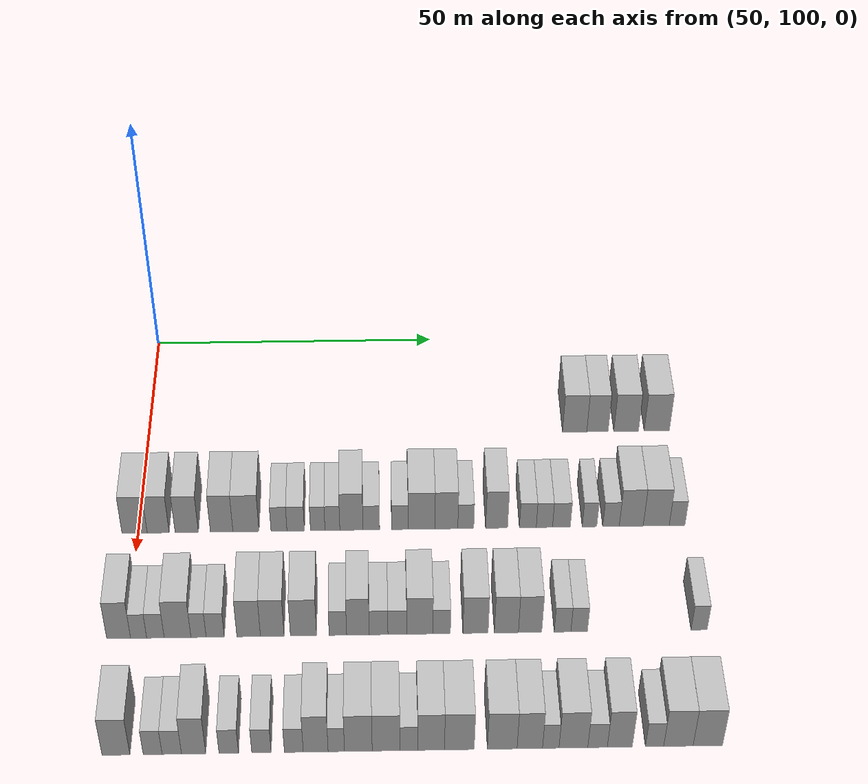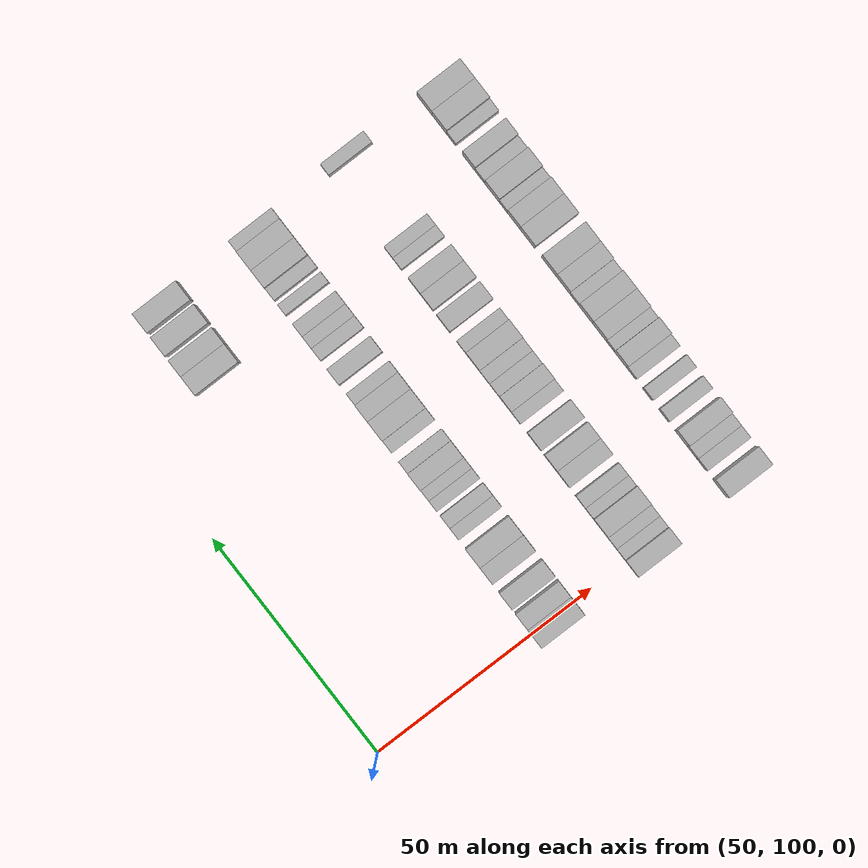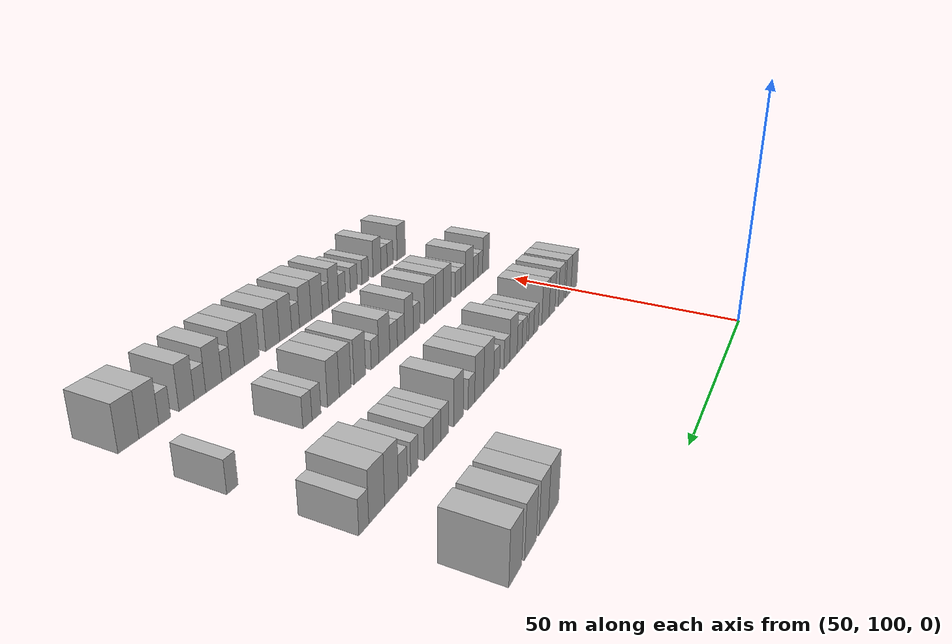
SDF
<sdf version="1.6">
 <world name="default">
  <model name="building_528">
   <static>1</static>
   <pose>69.0000 174.7450 0 0.000000 0.000000 0.000000</pose>
   <link name="link">
    <pose>0 0 4.50 0 0 0</pose>
    <collision name="collision"><geometry><box><size>10.0000 4.2751 9.0000</size></box></geometry></collision>
    <visual name="visual">
     <cast_shadows>0</cast_shadows>
     <geometry><box><size>10.0000 4.2751 9.0000</size></box></geometry>
     <material>
      <script>
       <uri>model://HANNAS_wall/materials/scripts</uri>
       <uri>model://HANNAS_wall/materials/textures</uri>
       <name>vrc/HANNAS_wall</name>
      </script>
     </material>
    </visual>
   </link>
  </model>
  <model name="building_529">
   <static>1</static>
   <pose>69.0000 178.7590 0 0.000000 0.000000 0.000000</pose>
   <link name="link">
    <pose>0 0 4.50 0 0 0</pose>
    <collision name="collision"><geometry><box><size>10.0000 3.7528 9.0000</size></box></geometry></collision>
    <visual name="visual">
     <cast_shadows>0</cast_shadows>
     <geometry><box><size>10.0000 3.7528 9.0000</size></box></geometry>
     <material>
      <script>
       <uri>model://HANNAS_wall/materials/scripts</uri>
       <uri>model://HANNAS_wall/materials/textures</uri>
       <name>vrc/HANNAS_wall</name>
      </script>
     </material>
    </visual>
   </link>
  </model>
  <model name="building_530">
   <static>1</static>
   <pose>69.0000 183.8069 0 0.000000 0.000000 0.000000</pose>
   <link name="link">
    <pose>0 0 4.50 0 0 0</pose>
    <collision name="collision"><geometry><box><size>10.0000 4.3430 9.0000</size></box></geometry></collision>
    <visual name="visual">
     <cast_shadows>0</cast_shadows>
     <geometry><box><size>10.0000 4.3430 9.0000</size></box></geometry>
     <material>
      <script>
       <uri>model://HANNAS_wall/materials/scripts</uri>
       <uri>model://HANNAS_wall/materials/textures</uri>
       <name>vrc/HANNAS_wall</name>
      </script>
     </material>
    </visual>
   </link>
  </model>
  <model name="building_531">
   <static>1</static>
   <pose>69.0000 189.1953 0 0.000000 0.000000 0.000000</pose>
   <link name="link">
    <pose>0 0 4.50 0 0 0</pose>
    <collision name="collision"><geometry><box><size>10.0000 4.4339 9.0000</size></box></geometry></collision>
    <visual name="visual">
     <cast_shadows>0</cast_shadows>
     <geometry><box><size>10.0000 4.4339 9.0000</size></box></geometry>
     <material>
      <script>
       <uri>model://HANNAS_wall/materials/scripts</uri>
       <uri>model://HANNAS_wall/materials/textures</uri>
       <name>vrc/HANNAS_wall</name>
      </script>
     </material>
    </visual>
   </link>
  </model>
  <model name="building_695">
   <static>1</static>
   <pose>91.0000 99.3769 0 0.000000 0.000000 0.000000</pose>
   <link name="link">
    <pose>0 0 4.50 0 0 0</pose>
    <collision name="collision"><geometry><box><size>10.0000 4.2020 9.0000</size></box></geometry></collision>
    <visual name="visual">
     <cast_shadows>0</cast_shadows>
     <geometry><box><size>10.0000 4.2020 9.0000</size></box></geometry>
     <material>
      <script>
       <uri>model://HANNAS_wall/materials/scripts</uri>
       <uri>model://HANNAS_wall/materials/textures</uri>
       <name>vrc/HANNAS_wall</name>
      </script>
     </material>
    </visual>
   </link>
  </model>
  <model name="building_696">
   <static>1</static>
   <pose>91.0000 103.3068 0 0.000000 0.000000 0.000000</pose>
   <link name="link">
    <pose>0 0 4.50 0 0 0</pose>
    <collision name="collision"><geometry><box><size>10.0000 3.6578 9.0000</size></box></geometry></collision>
    <visual name="visual">
     <cast_shadows>0</cast_shadows>
     <geometry><box><size>10.0000 3.6578 9.0000</size></box></geometry>
     <material>
      <script>
       <uri>model://HANNAS_wall/materials/scripts</uri>
       <uri>model://HANNAS_wall/materials/textures</uri>
       <name>vrc/HANNAS_wall</name>
      </script>
     </material>
    </visual>
   </link>
  </model>
  <model name="building_697">
   <static>1</static>
   <pose>91.0000 108.0763 0 0.000000 0.000000 0.000000</pose>
   <link name="link">
    <pose>0 0 4.50 0 0 0</pose>
    <collision name="collision"><geometry><box><size>10.0000 3.8812 9.0000</size></box></geometry></collision>
    <visual name="visual">
     <cast_shadows>0</cast_shadows>
     <geometry><box><size>10.0000 3.8812 9.0000</size></box></geometry>
     <material>
      <script>
       <uri>model://HANNAS_wall/materials/scripts</uri>
       <uri>model://HANNAS_wall/materials/textures</uri>
       <name>vrc/HANNAS_wall</name>
      </script>
     </material>
    </visual>
   </link>
  </model>
  <model name="building_698">
   <static>1</static>
   <pose>91.0000 113.8976 0 0.000000 0.000000 0.000000</pose>
   <link name="link">
    <pose>0 0 4.50 0 0 0</pose>
    <collision name="collision"><geometry><box><size>10.0000 3.7614 9.0000</size></box></geometry></collision>
    <visual name="visual">
     <cast_shadows>0</cast_shadows>
     <geometry><box><size>10.0000 3.7614 9.0000</size></box></geometry>
     <material>
      <script>
       <uri>model://HANNAS_wall/materials/scripts</uri>
       <uri>model://HANNAS_wall/materials/textures</uri>
       <name>vrc/HANNAS_wall</name>
      </script>
     </material>
    </visual>
   </link>
  </model>
  <model name="building_699">
   <static>1</static>
   <pose>91.0000 117.9586 0 0.000000 0.000000 0.000000</pose>
   <link name="link">
    <pose>0 0 4.50 0 0 0</pose>
    <collision name="collision"><geometry><box><size>10.0000 4.3605 9.0000</size></box></geometry></collision>
    <visual name="visual">
     <cast_shadows>0</cast_shadows>
     <geometry><box><size>10.0000 4.3605 9.0000</size></box></geometry>
     <material>
      <script>
       <uri>model://HANNAS_wall/materials/scripts</uri>
       <uri>model://HANNAS_wall/materials/textures</uri>
       <name>vrc/HANNAS_wall</name>
      </script>
     </material>
    </visual>
   </link>
  </model>
  <model name="building_700">
   <static>1</static>
   <pose>91.0000 123.4711 0 0.000000 0.000000 0.000000</pose>
   <link name="link">
    <pose>0 0 3.00 0 0 0</pose>
    <collision name="collision"><geometry><box><size>10.0000 2.6646 6.0000</size></box></geometry></collision>
    <visual name="visual">
     <cast_shadows>0</cast_shadows>
     <geometry><box><size>10.0000 2.6646 6.0000</size></box></geometry>
     <material>
      <script>
       <uri>model://HANNAS_wall/materials/scripts</uri>
       <uri>model://HANNAS_wall/materials/textures</uri>
       <name>vrc/HANNAS_wall</name>
      </script>
     </material>
    </visual>
   </link>
  </model>
  <model name="building_701">
   <static>1</static>
   <pose>91.0000 126.2668 0 0.000000 0.000000 0.000000</pose>
   <link name="link">
    <pose>0 0 3.00 0 0 0</pose>
    <collision name="collision"><geometry><box><size>10.0000 2.9268 6.0000</size></box></geometry></collision>
    <visual name="visual">
     <cast_shadows>0</cast_shadows>
     <geometry><box><size>10.0000 2.9268 6.0000</size></box></geometry>
     <material>
      <script>
       <uri>model://HANNAS_wall/materials/scripts</uri>
       <uri>model://HANNAS_wall/materials/textures</uri>
       <name>vrc/HANNAS_wall</name>
      </script>
     </material>
    </visual>
   </link>
  </model>
  <model name="building_702">
   <static>1</static>
   <pose>91.0000 129.9434 0 0.000000 0.000000 0.000000</pose>
   <link name="link">
    <pose>0 0 3.00 0 0 0</pose>
    <collision name="collision"><geometry><box><size>10.0000 2.4265 6.0000</size></box></geometry></collision>
    <visual name="visual">
     <cast_shadows>0</cast_shadows>
     <geometry><box><size>10.0000 2.4265 6.0000</size></box></geometry>
     <material>
      <script>
       <uri>model://HANNAS_wall/materials/scripts</uri>
       <uri>model://HANNAS_wall/materials/textures</uri>
       <name>vrc/HANNAS_wall</name>
      </script>
     </material>
    </visual>
   </link>
  </model>
  <model name="building_703">
   <static>1</static>
   <pose>91.0000 132.4025 0 0.000000 0.000000 0.000000</pose>
   <link name="link">
    <pose>0 0 3.00 0 0 0</pose>
    <collision name="collision"><geometry><box><size>10.0000 2.4916 6.0000</size></box></geometry></collision>
    <visual name="visual">
     <cast_shadows>0</cast_shadows>
     <geometry><box><size>10.0000 2.4916 6.0000</size></box></geometry>
     <material>
      <script>
       <uri>model://HANNAS_wall/materials/scripts</uri>
       <uri>model://HANNAS_wall/materials/textures</uri>
       <name>vrc/HANNAS_wall</name>
      </script>
     </material>
    </visual>
   </link>
  </model>
  <model name="building_704">
   <static>1</static>
   <pose>91.0000 135.5866 0 0.000000 0.000000 0.000000</pose>
   <link name="link">
    <pose>0 0 4.50 0 0 0</pose>
    <collision name="collision"><geometry><box><size>10.0000 3.8766 9.0000</size></box></geometry></collision>
    <visual name="visual">
     <cast_shadows>0</cast_shadows>
     <geometry><box><size>10.0000 3.8766 9.0000</size></box></geometry>
     <material>
      <script>
       <uri>model://HANNAS_wall/materials/scripts</uri>
       <uri>model://HANNAS_wall/materials/textures</uri>
       <name>vrc/HANNAS_wall</name>
      </script>
     </material>
    </visual>
   </link>
  </model>
  <model name="building_705">
   <static>1</static>
   <pose>91.0000 138.9116 0 0.000000 0.000000 0.000000</pose>
   <link name="link">
    <pose>0 0 3.00 0 0 0</pose>
    <collision name="collision"><geometry><box><size>10.0000 2.7735 6.0000</size></box></geometry></collision>
    <visual name="visual">
     <cast_shadows>0</cast_shadows>
     <geometry><box><size>10.0000 2.7735 6.0000</size></box></geometry>
     <material>
      <script>
       <uri>model://HANNAS_wall/materials/scripts</uri>
       <uri>model://HANNAS_wall/materials/textures</uri>
       <name>vrc/HANNAS_wall</name>
      </script>
     </material>
    </visual>
   </link>
  </model>
  <model name="building_706">
   <static>1</static>
   <pose>91.0000 143.6850 0 0.000000 0.000000 0.000000</pose>
   <link name="link">
    <pose>0 0 3.00 0 0 0</pose>
    <collision name="collision"><geometry><box><size>10.0000 2.7732 6.0000</size></box></geometry></collision>
    <visual name="visual">
     <cast_shadows>0</cast_shadows>
     <geometry><box><size>10.0000 2.7732 6.0000</size></box></geometry>
     <material>
      <script>
       <uri>model://HANNAS_wall/materials/scripts</uri>
       <uri>model://HANNAS_wall/materials/textures</uri>
       <name>vrc/HANNAS_wall</name>
      </script>
     </material>
    </visual>
   </link>
  </model>
  <model name="building_707">
   <static>1</static>
   <pose>91.0000 147.2993 0 0.000000 0.000000 0.000000</pose>
   <link name="link">
    <pose>0 0 4.50 0 0 0</pose>
    <collision name="collision"><geometry><box><size>10.0000 4.4553 9.0000</size></box></geometry></collision>
    <visual name="visual">
     <cast_shadows>0</cast_shadows>
     <geometry><box><size>10.0000 4.4553 9.0000</size></box></geometry>
     <material>
      <script>
       <uri>model://HANNAS_wall/materials/scripts</uri>
       <uri>model://HANNAS_wall/materials/textures</uri>
       <name>vrc/HANNAS_wall</name>
      </script>
     </material>
    </visual>
   </link>
  </model>
  <model name="building_708">
   <static>1</static>
   <pose>91.0000 151.4497 0 0.000000 0.000000 0.000000</pose>
   <link name="link">
    <pose>0 0 4.50 0 0 0</pose>
    <collision name="collision"><geometry><box><size>10.0000 3.8455 9.0000</size></box></geometry></collision>
    <visual name="visual">
     <cast_shadows>0</cast_shadows>
     <geometry><box><size>10.0000 3.8455 9.0000</size></box></geometry>
     <material>
      <script>
       <uri>model://HANNAS_wall/materials/scripts</uri>
       <uri>model://HANNAS_wall/materials/textures</uri>
       <name>vrc/HANNAS_wall</name>
      </script>
     </material>
    </visual>
   </link>
  </model>
  <model name="building_709">
   <static>1</static>
   <pose>91.0000 154.7059 0 0.000000 0.000000 0.000000</pose>
   <link name="link">
    <pose>0 0 3.00 0 0 0</pose>
    <collision name="collision"><geometry><box><size>10.0000 2.6669 6.0000</size></box></geometry></collision>
    <visual name="visual">
     <cast_shadows>0</cast_shadows>
     <geometry><box><size>10.0000 2.6669 6.0000</size></box></geometry>
     <material>
      <script>
       <uri>model://HANNAS_wall/materials/scripts</uri>
       <uri>model://HANNAS_wall/materials/textures</uri>
       <name>vrc/HANNAS_wall</name>
      </script>
     </material>
    </visual>
   </link>
  </model>
  <model name="building_710">
   <static>1</static>
   <pose>91.0000 159.8719 0 0.000000 0.000000 0.000000</pose>
   <link name="link">
    <pose>0 0 4.50 0 0 0</pose>
    <collision name="collision"><geometry><box><size>10.0000 3.6651 9.0000</size></box></geometry></collision>
    <visual name="visual">
     <cast_shadows>0</cast_shadows>
     <geometry><box><size>10.0000 3.6651 9.0000</size></box></geometry>
     <material>
      <script>
       <uri>model://HANNAS_wall/materials/scripts</uri>
       <uri>model://HANNAS_wall/materials/textures</uri>
       <name>vrc/HANNAS_wall</name>
      </script>
     </material>
    </visual>
   </link>
  </model>
  <model name="building_711">
   <static>1</static>
   <pose>91.0000 165.1101 0 0.000000 0.000000 0.000000</pose>
   <link name="link">
    <pose>0 0 3.00 0 0 0</pose>
    <collision name="collision"><geometry><box><size>10.0000 2.8114 6.0000</size></box></geometry></collision>
    <visual name="visual">
     <cast_shadows>0</cast_shadows>
     <geometry><box><size>10.0000 2.8114 6.0000</size></box></geometry>
     <material>
      <script>
       <uri>model://HANNAS_wall/materials/scripts</uri>
       <uri>model://HANNAS_wall/materials/textures</uri>
       <name>vrc/HANNAS_wall</name>
      </script>
     </material>
    </visual>
   </link>
  </model>
  <model name="building_712">
   <static>1</static>
   <pose>91.0000 167.8826 0 0.000000 0.000000 0.000000</pose>
   <link name="link">
    <pose>0 0 3.00 0 0 0</pose>
    <collision name="collision"><geometry><box><size>10.0000 2.7337 6.0000</size></box></geometry></collision>
    <visual name="visual">
     <cast_shadows>0</cast_shadows>
     <geometry><box><size>10.0000 2.7337 6.0000</size></box></geometry>
     <material>
      <script>
       <uri>model://HANNAS_wall/materials/scripts</uri>
       <uri>model://HANNAS_wall/materials/textures</uri>
       <name>vrc/HANNAS_wall</name>
      </script>
     </material>
    </visual>
   </link>
  </model>
  <model name="building_713">
   <static>1</static>
   <pose>91.0000 170.7404 0 0.000000 0.000000 0.000000</pose>
   <link name="link">
    <pose>0 0 3.00 0 0 0</pose>
    <collision name="collision"><geometry><box><size>10.0000 2.9818 6.0000</size></box></geometry></collision>
    <visual name="visual">
     <cast_shadows>0</cast_shadows>
     <geometry><box><size>10.0000 2.9818 6.0000</size></box></geometry>
     <material>
      <script>
       <uri>model://HANNAS_wall/materials/scripts</uri>
       <uri>model://HANNAS_wall/materials/textures</uri>
       <name>vrc/HANNAS_wall</name>
      </script>
     </material>
    </visual>
   </link>
  </model>
  <model name="building_714">
   <static>1</static>
   <pose>91.0000 175.4537 0 0.000000 0.000000 0.000000</pose>
   <link name="link">
    <pose>0 0 3.00 0 0 0</pose>
    <collision name="collision"><geometry><box><size>10.0000 2.4447 6.0000</size></box></geometry></collision>
    <visual name="visual">
     <cast_shadows>0</cast_shadows>
     <geometry><box><size>10.0000 2.4447 6.0000</size></box></geometry>
     <material>
      <script>
       <uri>model://HANNAS_wall/materials/scripts</uri>
       <uri>model://HANNAS_wall/materials/textures</uri>
       <name>vrc/HANNAS_wall</name>
      </script>
     </material>
    </visual>
   </link>
  </model>
  <model name="building_715">
   <static>1</static>
   <pose>91.0000 179.0590 0 0.000000 0.000000 0.000000</pose>
   <link name="link">
    <pose>0 0 3.00 0 0 0</pose>
    <collision name="collision"><geometry><box><size>10.0000 2.7661 6.0000</size></box></geometry></collision>
    <visual name="visual">
     <cast_shadows>0</cast_shadows>
     <geometry><box><size>10.0000 2.7661 6.0000</size></box></geometry>
     <material>
      <script>
       <uri>model://HANNAS_wall/materials/scripts</uri>
       <uri>model://HANNAS_wall/materials/textures</uri>
       <name>vrc/HANNAS_wall</name>
      </script>
     </material>
    </visual>
   </link>
  </model>
  <model name="building_716">
   <static>1</static>
   <pose>91.0000 182.4556 0 0.000000 0.000000 0.000000</pose>
   <link name="link">
    <pose>0 0 4.50 0 0 0</pose>
    <collision name="collision"><geometry><box><size>10.0000 4.0269 9.0000</size></box></geometry></collision>
    <visual name="visual">
     <cast_shadows>0</cast_shadows>
     <geometry><box><size>10.0000 4.0269 9.0000</size></box></geometry>
     <material>
      <script>
       <uri>model://HANNAS_wall/materials/scripts</uri>
       <uri>model://HANNAS_wall/materials/textures</uri>
       <name>vrc/HANNAS_wall</name>
      </script>
     </material>
    </visual>
   </link>
  </model>
  <model name="building_717">
   <static>1</static>
   <pose>91.0000 186.6535 0 0.000000 0.000000 0.000000</pose>
   <link name="link">
    <pose>0 0 4.50 0 0 0</pose>
    <collision name="collision"><geometry><box><size>10.0000 4.3689 9.0000</size></box></geometry></collision>
    <visual name="visual">
     <cast_shadows>0</cast_shadows>
     <geometry><box><size>10.0000 4.3689 9.0000</size></box></geometry>
     <material>
      <script>
       <uri>model://HANNAS_wall/materials/scripts</uri>
       <uri>model://HANNAS_wall/materials/textures</uri>
       <name>vrc/HANNAS_wall</name>
      </script>
     </material>
    </visual>
   </link>
  </model>
  <model name="building_718">
   <static>1</static>
   <pose>91.0000 190.1551 0 0.000000 0.000000 0.000000</pose>
   <link name="link">
    <pose>0 0 3.00 0 0 0</pose>
    <collision name="collision"><geometry><box><size>10.0000 2.6342 6.0000</size></box></geometry></collision>
    <visual name="visual">
     <cast_shadows>0</cast_shadows>
     <geometry><box><size>10.0000 2.6342 6.0000</size></box></geometry>
     <material>
      <script>
       <uri>model://HANNAS_wall/materials/scripts</uri>
       <uri>model://HANNAS_wall/materials/textures</uri>
       <name>vrc/HANNAS_wall</name>
      </script>
     </material>
    </visual>
   </link>
  </model>
  <model name="building_897">
   <static>1</static>
   <pose>113.0000 98.6538 0 0.000000 0.000000 0.000000</pose>
   <link name="link">
    <pose>0 0 4.50 0 0 0</pose>
    <collision name="collision"><geometry><box><size>10.0000 3.7839 9.0000</size></box></geometry></collision>
    <visual name="visual">
     <cast_shadows>0</cast_shadows>
     <geometry><box><size>10.0000 3.7839 9.0000</size></box></geometry>
     <material>
      <script>
       <uri>model://HANNAS_wall/materials/scripts</uri>
       <uri>model://HANNAS_wall/materials/textures</uri>
       <name>vrc/HANNAS_wall</name>
      </script>
     </material>
    </visual>
   </link>
  </model>
  <model name="building_898">
   <static>1</static>
   <pose>113.0000 101.8212 0 0.000000 0.000000 0.000000</pose>
   <link name="link">
    <pose>0 0 3.00 0 0 0</pose>
    <collision name="collision"><geometry><box><size>10.0000 2.5510 6.0000</size></box></geometry></collision>
    <visual name="visual">
     <cast_shadows>0</cast_shadows>
     <geometry><box><size>10.0000 2.5510 6.0000</size></box></geometry>
     <material>
      <script>
       <uri>model://HANNAS_wall/materials/scripts</uri>
       <uri>model://HANNAS_wall/materials/textures</uri>
       <name>vrc/HANNAS_wall</name>
      </script>
     </material>
    </visual>
   </link>
  </model>
  <model name="building_899">
   <static>1</static>
   <pose>113.0000 104.4828 0 0.000000 0.000000 0.000000</pose>
   <link name="link">
    <pose>0 0 3.00 0 0 0</pose>
    <collision name="collision"><geometry><box><size>10.0000 2.7722 6.0000</size></box></geometry></collision>
    <visual name="visual">
     <cast_shadows>0</cast_shadows>
     <geometry><box><size>10.0000 2.7722 6.0000</size></box></geometry>
     <material>
      <script>
       <uri>model://HANNAS_wall/materials/scripts</uri>
       <uri>model://HANNAS_wall/materials/textures</uri>
       <name>vrc/HANNAS_wall</name>
      </script>
     </material>
    </visual>
   </link>
  </model>
  <model name="building_900">
   <static>1</static>
   <pose>113.0000 107.9944 0 0.000000 0.000000 0.000000</pose>
   <link name="link">
    <pose>0 0 4.50 0 0 0</pose>
    <collision name="collision"><geometry><box><size>10.0000 4.2511 9.0000</size></box></geometry></collision>
    <visual name="visual">
     <cast_shadows>0</cast_shadows>
     <geometry><box><size>10.0000 4.2511 9.0000</size></box></geometry>
     <material>
      <script>
       <uri>model://HANNAS_wall/materials/scripts</uri>
       <uri>model://HANNAS_wall/materials/textures</uri>
       <name>vrc/HANNAS_wall</name>
      </script>
     </material>
    </visual>
   </link>
  </model>
  <model name="building_901">
   <static>1</static>
   <pose>113.0000 111.3246 0 0.000000 0.000000 0.000000</pose>
   <link name="link">
    <pose>0 0 3.00 0 0 0</pose>
    <collision name="collision"><geometry><box><size>10.0000 2.4092 6.0000</size></box></geometry></collision>
    <visual name="visual">
     <cast_shadows>0</cast_shadows>
     <geometry><box><size>10.0000 2.4092 6.0000</size></box></geometry>
     <material>
      <script>
       <uri>model://HANNAS_wall/materials/scripts</uri>
       <uri>model://HANNAS_wall/materials/textures</uri>
       <name>vrc/HANNAS_wall</name>
      </script>
     </material>
    </visual>
   </link>
  </model>
  <model name="building_902">
   <static>1</static>
   <pose>113.0000 113.9732 0 0.000000 0.000000 0.000000</pose>
   <link name="link">
    <pose>0 0 3.00 0 0 0</pose>
    <collision name="collision"><geometry><box><size>10.0000 2.8882 6.0000</size></box></geometry></collision>
    <visual name="visual">
     <cast_shadows>0</cast_shadows>
     <geometry><box><size>10.0000 2.8882 6.0000</size></box></geometry>
     <material>
      <script>
       <uri>model://HANNAS_wall/materials/scripts</uri>
       <uri>model://HANNAS_wall/materials/textures</uri>
       <name>vrc/HANNAS_wall</name>
      </script>
     </material>
    </visual>
   </link>
  </model>
  <model name="building_903">
   <static>1</static>
   <pose>113.0000 119.2883 0 0.000000 0.000000 0.000000</pose>
   <link name="link">
    <pose>0 0 4.50 0 0 0</pose>
    <collision name="collision"><geometry><box><size>10.0000 3.7419 9.0000</size></box></geometry></collision>
    <visual name="visual">
     <cast_shadows>0</cast_shadows>
     <geometry><box><size>10.0000 3.7419 9.0000</size></box></geometry>
     <material>
      <script>
       <uri>model://HANNAS_wall/materials/scripts</uri>
       <uri>model://HANNAS_wall/materials/textures</uri>
       <name>vrc/HANNAS_wall</name>
      </script>
     </material>
    </visual>
   </link>
  </model>
  <model name="building_904">
   <static>1</static>
   <pose>113.0000 123.0404 0 0.000000 0.000000 0.000000</pose>
   <link name="link">
    <pose>0 0 4.50 0 0 0</pose>
    <collision name="collision"><geometry><box><size>10.0000 3.7623 9.0000</size></box></geometry></collision>
    <visual name="visual">
     <cast_shadows>0</cast_shadows>
     <geometry><box><size>10.0000 3.7623 9.0000</size></box></geometry>
     <material>
      <script>
       <uri>model://HANNAS_wall/materials/scripts</uri>
       <uri>model://HANNAS_wall/materials/textures</uri>
       <name>vrc/HANNAS_wall</name>
      </script>
     </material>
    </visual>
   </link>
  </model>
  <model name="building_905">
   <static>1</static>
   <pose>113.0000 128.0006 0 0.000000 0.000000 0.000000</pose>
   <link name="link">
    <pose>0 0 4.50 0 0 0</pose>
    <collision name="collision"><geometry><box><size>10.0000 4.1582 9.0000</size></box></geometry></collision>
    <visual name="visual">
     <cast_shadows>0</cast_shadows>
     <geometry><box><size>10.0000 4.1582 9.0000</size></box></geometry>
     <material>
      <script>
       <uri>model://HANNAS_wall/materials/scripts</uri>
       <uri>model://HANNAS_wall/materials/textures</uri>
       <name>vrc/HANNAS_wall</name>
      </script>
     </material>
    </visual>
   </link>
  </model>
  <model name="building_906">
   <static>1</static>
   <pose>113.0000 133.4681 0 0.000000 0.000000 0.000000</pose>
   <link name="link">
    <pose>0 0 3.00 0 0 0</pose>
    <collision name="collision"><geometry><box><size>10.0000 2.7767 6.0000</size></box></geometry></collision>
    <visual name="visual">
     <cast_shadows>0</cast_shadows>
     <geometry><box><size>10.0000 2.7767 6.0000</size></box></geometry>
     <material>
      <script>
       <uri>model://HANNAS_wall/materials/scripts</uri>
       <uri>model://HANNAS_wall/materials/textures</uri>
       <name>vrc/HANNAS_wall</name>
      </script>
     </material>
    </visual>
   </link>
  </model>
  <model name="building_907">
   <static>1</static>
   <pose>113.0000 136.6581 0 0.000000 0.000000 0.000000</pose>
   <link name="link">
    <pose>0 0 4.50 0 0 0</pose>
    <collision name="collision"><geometry><box><size>10.0000 3.6033 9.0000</size></box></geometry></collision>
    <visual name="visual">
     <cast_shadows>0</cast_shadows>
     <geometry><box><size>10.0000 3.6033 9.0000</size></box></geometry>
     <material>
      <script>
       <uri>model://HANNAS_wall/materials/scripts</uri>
       <uri>model://HANNAS_wall/materials/textures</uri>
       <name>vrc/HANNAS_wall</name>
      </script>
     </material>
    </visual>
   </link>
  </model>
  <model name="building_908">
   <static>1</static>
   <pose>113.0000 139.9396 0 0.000000 0.000000 0.000000</pose>
   <link name="link">
    <pose>0 0 3.00 0 0 0</pose>
    <collision name="collision"><geometry><box><size>10.0000 2.9597 6.0000</size></box></geometry></collision>
    <visual name="visual">
     <cast_shadows>0</cast_shadows>
     <geometry><box><size>10.0000 2.9597 6.0000</size></box></geometry>
     <material>
      <script>
       <uri>model://HANNAS_wall/materials/scripts</uri>
       <uri>model://HANNAS_wall/materials/textures</uri>
       <name>vrc/HANNAS_wall</name>
      </script>
     </material>
    </visual>
   </link>
  </model>
  <model name="building_909">
   <static>1</static>
   <pose>113.0000 142.9151 0 0.000000 0.000000 0.000000</pose>
   <link name="link">
    <pose>0 0 3.00 0 0 0</pose>
    <collision name="collision"><geometry><box><size>10.0000 2.9912 6.0000</size></box></geometry></collision>
    <visual name="visual">
     <cast_shadows>0</cast_shadows>
     <geometry><box><size>10.0000 2.9912 6.0000</size></box></geometry>
     <material>
      <script>
       <uri>model://HANNAS_wall/materials/scripts</uri>
       <uri>model://HANNAS_wall/materials/textures</uri>
       <name>vrc/HANNAS_wall</name>
      </script>
     </material>
    </visual>
   </link>
  </model>
  <model name="building_910">
   <static>1</static>
   <pose>113.0000 146.4890 0 0.000000 0.000000 0.000000</pose>
   <link name="link">
    <pose>0 0 4.50 0 0 0</pose>
    <collision name="collision"><geometry><box><size>10.0000 4.1565 9.0000</size></box></geometry></collision>
    <visual name="visual">
     <cast_shadows>0</cast_shadows>
     <geometry><box><size>10.0000 4.1565 9.0000</size></box></geometry>
     <material>
      <script>
       <uri>model://HANNAS_wall/materials/scripts</uri>
       <uri>model://HANNAS_wall/materials/textures</uri>
       <name>vrc/HANNAS_wall</name>
      </script>
     </material>
    </visual>
   </link>
  </model>
  <model name="building_911">
   <static>1</static>
   <pose>113.0000 149.9634 0 0.000000 0.000000 0.000000</pose>
   <link name="link">
    <pose>0 0 3.00 0 0 0</pose>
    <collision name="collision"><geometry><box><size>10.0000 2.7922 6.0000</size></box></geometry></collision>
    <visual name="visual">
     <cast_shadows>0</cast_shadows>
     <geometry><box><size>10.0000 2.7922 6.0000</size></box></geometry>
     <material>
      <script>
       <uri>model://HANNAS_wall/materials/scripts</uri>
       <uri>model://HANNAS_wall/materials/textures</uri>
       <name>vrc/HANNAS_wall</name>
      </script>
     </material>
    </visual>
   </link>
  </model>
  <model name="building_912">
   <static>1</static>
   <pose>113.0000 155.3643 0 0.000000 0.000000 0.000000</pose>
   <link name="link">
    <pose>0 0 4.50 0 0 0</pose>
    <collision name="collision"><geometry><box><size>10.0000 4.0097 9.0000</size></box></geometry></collision>
    <visual name="visual">
     <cast_shadows>0</cast_shadows>
     <geometry><box><size>10.0000 4.0097 9.0000</size></box></geometry>
     <material>
      <script>
       <uri>model://HANNAS_wall/materials/scripts</uri>
       <uri>model://HANNAS_wall/materials/textures</uri>
       <name>vrc/HANNAS_wall</name>
      </script>
     </material>
    </visual>
   </link>
  </model>
  <model name="building_913">
   <static>1</static>
   <pose>113.0000 160.2844 0 0.000000 0.000000 0.000000</pose>
   <link name="link">
    <pose>0 0 4.50 0 0 0</pose>
    <collision name="collision"><geometry><box><size>10.0000 3.8304 9.0000</size></box></geometry></collision>
    <visual name="visual">
     <cast_shadows>0</cast_shadows>
     <geometry><box><size>10.0000 3.8304 9.0000</size></box></geometry>
     <material>
      <script>
       <uri>model://HANNAS_wall/materials/scripts</uri>
       <uri>model://HANNAS_wall/materials/textures</uri>
       <name>vrc/HANNAS_wall</name>
      </script>
     </material>
    </visual>
   </link>
  </model>
  <model name="building_914">
   <static>1</static>
   <pose>113.0000 164.0589 0 0.000000 0.000000 0.000000</pose>
   <link name="link">
    <pose>0 0 4.50 0 0 0</pose>
    <collision name="collision"><geometry><box><size>10.0000 3.7184 9.0000</size></box></geometry></collision>
    <visual name="visual">
     <cast_shadows>0</cast_shadows>
     <geometry><box><size>10.0000 3.7184 9.0000</size></box></geometry>
     <material>
      <script>
       <uri>model://HANNAS_wall/materials/scripts</uri>
       <uri>model://HANNAS_wall/materials/textures</uri>
       <name>vrc/HANNAS_wall</name>
      </script>
     </material>
    </visual>
   </link>
  </model>
  <model name="building_915">
   <static>1</static>
   <pose>113.0000 169.2456 0 0.000000 0.000000 0.000000</pose>
   <link name="link">
    <pose>0 0 3.00 0 0 0</pose>
    <collision name="collision"><geometry><box><size>10.0000 2.6552 6.0000</size></box></geometry></collision>
    <visual name="visual">
     <cast_shadows>0</cast_shadows>
     <geometry><box><size>10.0000 2.6552 6.0000</size></box></geometry>
     <material>
      <script>
       <uri>model://HANNAS_wall/materials/scripts</uri>
       <uri>model://HANNAS_wall/materials/textures</uri>
       <name>vrc/HANNAS_wall</name>
      </script>
     </material>
    </visual>
   </link>
  </model>
  <model name="building_916">
   <static>1</static>
   <pose>113.0000 171.8908 0 0.000000 0.000000 0.000000</pose>
   <link name="link">
    <pose>0 0 3.00 0 0 0</pose>
    <collision name="collision"><geometry><box><size>10.0000 2.6352 6.0000</size></box></geometry></collision>
    <visual name="visual">
     <cast_shadows>0</cast_shadows>
     <geometry><box><size>10.0000 2.6352 6.0000</size></box></geometry>
     <material>
      <script>
       <uri>model://HANNAS_wall/materials/scripts</uri>
       <uri>model://HANNAS_wall/materials/textures</uri>
       <name>vrc/HANNAS_wall</name>
      </script>
     </material>
    </visual>
   </link>
  </model>
  <model name="building_917">
   <static>1</static>
   <pose>113.0000 191.0546 0 0.000000 0.000000 0.000000</pose>
   <link name="link">
    <pose>0 0 3.00 0 0 0</pose>
    <collision name="collision"><geometry><box><size>10.0000 2.5641 6.0000</size></box></geometry></collision>
    <visual name="visual">
     <cast_shadows>0</cast_shadows>
     <geometry><box><size>10.0000 2.5641 6.0000</size></box></geometry>
     <material>
      <script>
       <uri>model://HANNAS_wall/materials/scripts</uri>
       <uri>model://HANNAS_wall/materials/textures</uri>
       <name>vrc/HANNAS_wall</name>
      </script>
     </material>
    </visual>
   </link>
  </model>
  <model name="building_1078">
   <static>1</static>
   <pose>135.0000 100.1867 0 0.000000 0.000000 0.000000</pose>
   <link name="link">
    <pose>0 0 4.50 0 0 0</pose>
    <collision name="collision"><geometry><box><size>10.0000 4.1998 9.0000</size></box></geometry></collision>
    <visual name="visual">
     <cast_shadows>0</cast_shadows>
     <geometry><box><size>10.0000 4.1998 9.0000</size></box></geometry>
     <material>
      <script>
       <uri>model://HANNAS_wall/materials/scripts</uri>
       <uri>model://HANNAS_wall/materials/textures</uri>
       <name>vrc/HANNAS_wall</name>
      </script>
     </material>
    </visual>
   </link>
  </model>
  <model name="building_1079">
   <static>1</static>
   <pose>135.0000 105.7038 0 0.000000 0.000000 0.000000</pose>
   <link name="link">
    <pose>0 0 3.00 0 0 0</pose>
    <collision name="collision"><geometry><box><size>10.0000 2.8344 6.0000</size></box></geometry></collision>
    <visual name="visual">
     <cast_shadows>0</cast_shadows>
     <geometry><box><size>10.0000 2.8344 6.0000</size></box></geometry>
     <material>
      <script>
       <uri>model://HANNAS_wall/materials/scripts</uri>
       <uri>model://HANNAS_wall/materials/textures</uri>
       <name>vrc/HANNAS_wall</name>
      </script>
     </material>
    </visual>
   </link>
  </model>
  <model name="building_1080">
   <static>1</static>
   <pose>135.0000 108.5840 0 0.000000 0.000000 0.000000</pose>
   <link name="link">
    <pose>0 0 3.00 0 0 0</pose>
    <collision name="collision"><geometry><box><size>10.0000 2.9261 6.0000</size></box></geometry></collision>
    <visual name="visual">
     <cast_shadows>0</cast_shadows>
     <geometry><box><size>10.0000 2.9261 6.0000</size></box></geometry>
     <material>
      <script>
       <uri>model://HANNAS_wall/materials/scripts</uri>
       <uri>model://HANNAS_wall/materials/textures</uri>
       <name>vrc/HANNAS_wall</name>
      </script>
     </material>
    </visual>
   </link>
  </model>
  <model name="building_1081">
   <static>1</static>
   <pose>135.0000 111.8756 0 0.000000 0.000000 0.000000</pose>
   <link name="link">
    <pose>0 0 4.50 0 0 0</pose>
    <collision name="collision"><geometry><box><size>10.0000 3.6571 9.0000</size></box></geometry></collision>
    <visual name="visual">
     <cast_shadows>0</cast_shadows>
     <geometry><box><size>10.0000 3.6571 9.0000</size></box></geometry>
     <material>
      <script>
       <uri>model://HANNAS_wall/materials/scripts</uri>
       <uri>model://HANNAS_wall/materials/textures</uri>
       <name>vrc/HANNAS_wall</name>
      </script>
     </material>
    </visual>
   </link>
  </model>
  <model name="building_1082">
   <static>1</static>
   <pose>135.0000 117.1705 0 0.000000 0.000000 0.000000</pose>
   <link name="link">
    <pose>0 0 3.00 0 0 0</pose>
    <collision name="collision"><geometry><box><size>10.0000 2.9327 6.0000</size></box></geometry></collision>
    <visual name="visual">
     <cast_shadows>0</cast_shadows>
     <geometry><box><size>10.0000 2.9327 6.0000</size></box></geometry>
     <material>
      <script>
       <uri>model://HANNAS_wall/materials/scripts</uri>
       <uri>model://HANNAS_wall/materials/textures</uri>
       <name>vrc/HANNAS_wall</name>
      </script>
     </material>
    </visual>
   </link>
  </model>
  <model name="building_1083">
   <static>1</static>
   <pose>135.0000 122.0945 0 0.000000 0.000000 0.000000</pose>
   <link name="link">
    <pose>0 0 3.00 0 0 0</pose>
    <collision name="collision"><geometry><box><size>10.0000 2.9154 6.0000</size></box></geometry></collision>
    <visual name="visual">
     <cast_shadows>0</cast_shadows>
     <geometry><box><size>10.0000 2.9154 6.0000</size></box></geometry>
     <material>
      <script>
       <uri>model://HANNAS_wall/materials/scripts</uri>
       <uri>model://HANNAS_wall/materials/textures</uri>
       <name>vrc/HANNAS_wall</name>
      </script>
     </material>
    </visual>
   </link>
  </model>
  <model name="building_1084">
   <static>1</static>
   <pose>135.0000 126.9706 0 0.000000 0.000000 0.000000</pose>
   <link name="link">
    <pose>0 0 3.00 0 0 0</pose>
    <collision name="collision"><geometry><box><size>10.0000 2.8367 6.0000</size></box></geometry></collision>
    <visual name="visual">
     <cast_shadows>0</cast_shadows>
     <geometry><box><size>10.0000 2.8367 6.0000</size></box></geometry>
     <material>
      <script>
       <uri>model://HANNAS_wall/materials/scripts</uri>
       <uri>model://HANNAS_wall/materials/textures</uri>
       <name>vrc/HANNAS_wall</name>
      </script>
     </material>
    </visual>
   </link>
  </model>
  <model name="building_1085">
   <static>1</static>
   <pose>135.0000 130.2636 0 0.000000 0.000000 0.000000</pose>
   <link name="link">
    <pose>0 0 4.50 0 0 0</pose>
    <collision name="collision"><geometry><box><size>10.0000 3.7492 9.0000</size></box></geometry></collision>
    <visual name="visual">
     <cast_shadows>0</cast_shadows>
     <geometry><box><size>10.0000 3.7492 9.0000</size></box></geometry>
     <material>
      <script>
       <uri>model://HANNAS_wall/materials/scripts</uri>
       <uri>model://HANNAS_wall/materials/textures</uri>
       <name>vrc/HANNAS_wall</name>
      </script>
     </material>
    </visual>
   </link>
  </model>
  <model name="building_1086">
   <static>1</static>
   <pose>135.0000 133.3754 0 0.000000 0.000000 0.000000</pose>
   <link name="link">
    <pose>0 0 3.00 0 0 0</pose>
    <collision name="collision"><geometry><box><size>10.0000 2.4744 6.0000</size></box></geometry></collision>
    <visual name="visual">
     <cast_shadows>0</cast_shadows>
     <geometry><box><size>10.0000 2.4744 6.0000</size></box></geometry>
     <material>
      <script>
       <uri>model://HANNAS_wall/materials/scripts</uri>
       <uri>model://HANNAS_wall/materials/textures</uri>
       <name>vrc/HANNAS_wall</name>
      </script>
     </material>
    </visual>
   </link>
  </model>
  <model name="building_1087">
   <static>1</static>
   <pose>135.0000 136.7027 0 0.000000 0.000000 0.000000</pose>
   <link name="link">
    <pose>0 0 4.50 0 0 0</pose>
    <collision name="collision"><geometry><box><size>10.0000 4.1803 9.0000</size></box></geometry></collision>
    <visual name="visual">
     <cast_shadows>0</cast_shadows>
     <geometry><box><size>10.0000 4.1803 9.0000</size></box></geometry>
     <material>
      <script>
       <uri>model://HANNAS_wall/materials/scripts</uri>
       <uri>model://HANNAS_wall/materials/textures</uri>
       <name>vrc/HANNAS_wall</name>
      </script>
     </material>
    </visual>
   </link>
  </model>
  <model name="building_1088">
   <static>1</static>
   <pose>135.0000 140.8829 0 0.000000 0.000000 0.000000</pose>
   <link name="link">
    <pose>0 0 4.50 0 0 0</pose>
    <collision name="collision"><geometry><box><size>10.0000 4.1801 9.0000</size></box></geometry></collision>
    <visual name="visual">
     <cast_shadows>0</cast_shadows>
     <geometry><box><size>10.0000 4.1801 9.0000</size></box></geometry>
     <material>
      <script>
       <uri>model://HANNAS_wall/materials/scripts</uri>
       <uri>model://HANNAS_wall/materials/textures</uri>
       <name>vrc/HANNAS_wall</name>
      </script>
     </material>
    </visual>
   </link>
  </model>
  <model name="building_1089">
   <static>1</static>
   <pose>135.0000 144.3208 0 0.000000 0.000000 0.000000</pose>
   <link name="link">
    <pose>0 0 3.00 0 0 0</pose>
    <collision name="collision"><geometry><box><size>10.0000 2.6957 6.0000</size></box></geometry></collision>
    <visual name="visual">
     <cast_shadows>0</cast_shadows>
     <geometry><box><size>10.0000 2.6957 6.0000</size></box></geometry>
     <material>
      <script>
       <uri>model://HANNAS_wall/materials/scripts</uri>
       <uri>model://HANNAS_wall/materials/textures</uri>
       <name>vrc/HANNAS_wall</name>
      </script>
     </material>
    </visual>
   </link>
  </model>
  <model name="building_1090">
   <static>1</static>
   <pose>135.0000 147.6848 0 0.000000 0.000000 0.000000</pose>
   <link name="link">
    <pose>0 0 4.50 0 0 0</pose>
    <collision name="collision"><geometry><box><size>10.0000 4.0324 9.0000</size></box></geometry></collision>
    <visual name="visual">
     <cast_shadows>0</cast_shadows>
     <geometry><box><size>10.0000 4.0324 9.0000</size></box></geometry>
     <material>
      <script>
       <uri>model://HANNAS_wall/materials/scripts</uri>
       <uri>model://HANNAS_wall/materials/textures</uri>
       <name>vrc/HANNAS_wall</name>
      </script>
     </material>
    </visual>
   </link>
  </model>
  <model name="building_1091">
   <static>1</static>
   <pose>135.0000 151.9466 0 0.000000 0.000000 0.000000</pose>
   <link name="link">
    <pose>0 0 4.50 0 0 0</pose>
    <collision name="collision"><geometry><box><size>10.0000 4.4911 9.0000</size></box></geometry></collision>
    <visual name="visual">
     <cast_shadows>0</cast_shadows>
     <geometry><box><size>10.0000 4.4911 9.0000</size></box></geometry>
     <material>
      <script>
       <uri>model://HANNAS_wall/materials/scripts</uri>
       <uri>model://HANNAS_wall/materials/textures</uri>
       <name>vrc/HANNAS_wall</name>
      </script>
     </material>
    </visual>
   </link>
  </model>
  <model name="building_1092">
   <static>1</static>
   <pose>135.0000 158.4337 0 0.000000 0.000000 0.000000</pose>
   <link name="link">
    <pose>0 0 4.50 0 0 0</pose>
    <collision name="collision"><geometry><box><size>10.0000 4.4831 9.0000</size></box></geometry></collision>
    <visual name="visual">
     <cast_shadows>0</cast_shadows>
     <geometry><box><size>10.0000 4.4831 9.0000</size></box></geometry>
     <material>
      <script>
       <uri>model://HANNAS_wall/materials/scripts</uri>
       <uri>model://HANNAS_wall/materials/textures</uri>
       <name>vrc/HANNAS_wall</name>
      </script>
     </material>
    </visual>
   </link>
  </model>
  <model name="building_1093">
   <static>1</static>
   <pose>135.0000 162.6026 0 0.000000 0.000000 0.000000</pose>
   <link name="link">
    <pose>0 0 4.50 0 0 0</pose>
    <collision name="collision"><geometry><box><size>10.0000 3.8548 9.0000</size></box></geometry></collision>
    <visual name="visual">
     <cast_shadows>0</cast_shadows>
     <geometry><box><size>10.0000 3.8548 9.0000</size></box></geometry>
     <material>
      <script>
       <uri>model://HANNAS_wall/materials/scripts</uri>
       <uri>model://HANNAS_wall/materials/textures</uri>
       <name>vrc/HANNAS_wall</name>
      </script>
     </material>
    </visual>
   </link>
  </model>
  <model name="building_1094">
   <static>1</static>
   <pose>135.0000 165.7730 0 0.000000 0.000000 0.000000</pose>
   <link name="link">
    <pose>0 0 3.00 0 0 0</pose>
    <collision name="collision"><geometry><box><size>10.0000 2.4860 6.0000</size></box></geometry></collision>
    <visual name="visual">
     <cast_shadows>0</cast_shadows>
     <geometry><box><size>10.0000 2.4860 6.0000</size></box></geometry>
     <material>
      <script>
       <uri>model://HANNAS_wall/materials/scripts</uri>
       <uri>model://HANNAS_wall/materials/textures</uri>
       <name>vrc/HANNAS_wall</name>
      </script>
     </material>
    </visual>
   </link>
  </model>
  <model name="building_1095">
   <static>1</static>
   <pose>135.0000 169.1986 0 0.000000 0.000000 0.000000</pose>
   <link name="link">
    <pose>0 0 4.50 0 0 0</pose>
    <collision name="collision"><geometry><box><size>10.0000 4.3652 9.0000</size></box></geometry></collision>
    <visual name="visual">
     <cast_shadows>0</cast_shadows>
     <geometry><box><size>10.0000 4.3652 9.0000</size></box></geometry>
     <material>
      <script>
       <uri>model://HANNAS_wall/materials/scripts</uri>
       <uri>model://HANNAS_wall/materials/textures</uri>
       <name>vrc/HANNAS_wall</name>
      </script>
     </material>
    </visual>
   </link>
  </model>
  <model name="building_1096">
   <static>1</static>
   <pose>135.0000 172.8588 0 0.000000 0.000000 0.000000</pose>
   <link name="link">
    <pose>0 0 3.00 0 0 0</pose>
    <collision name="collision"><geometry><box><size>10.0000 2.9552 6.0000</size></box></geometry></collision>
    <visual name="visual">
     <cast_shadows>0</cast_shadows>
     <geometry><box><size>10.0000 2.9552 6.0000</size></box></geometry>
     <material>
      <script>
       <uri>model://HANNAS_wall/materials/scripts</uri>
       <uri>model://HANNAS_wall/materials/textures</uri>
       <name>vrc/HANNAS_wall</name>
      </script>
     </material>
    </visual>
   </link>
  </model>
  <model name="building_1097">
   <static>1</static>
   <pose>135.0000 176.2256 0 0.000000 0.000000 0.000000</pose>
   <link name="link">
    <pose>0 0 4.50 0 0 0</pose>
    <collision name="collision"><geometry><box><size>10.0000 3.7784 9.0000</size></box></geometry></collision>
    <visual name="visual">
     <cast_shadows>0</cast_shadows>
     <geometry><box><size>10.0000 3.7784 9.0000</size></box></geometry>
     <material>
      <script>
       <uri>model://HANNAS_wall/materials/scripts</uri>
       <uri>model://HANNAS_wall/materials/textures</uri>
       <name>vrc/HANNAS_wall</name>
      </script>
     </material>
    </visual>
   </link>
  </model>
  <model name="building_1098">
   <static>1</static>
   <pose>135.0000 181.4968 0 0.000000 0.000000 0.000000</pose>
   <link name="link">
    <pose>0 0 3.00 0 0 0</pose>
    <collision name="collision"><geometry><box><size>10.0000 2.7639 6.0000</size></box></geometry></collision>
    <visual name="visual">
     <cast_shadows>0</cast_shadows>
     <geometry><box><size>10.0000 2.7639 6.0000</size></box></geometry>
     <material>
      <script>
       <uri>model://HANNAS_wall/materials/scripts</uri>
       <uri>model://HANNAS_wall/materials/textures</uri>
       <name>vrc/HANNAS_wall</name>
      </script>
     </material>
    </visual>
   </link>
  </model>
  <model name="building_1099">
   <static>1</static>
   <pose>135.0000 185.1054 0 0.000000 0.000000 0.000000</pose>
   <link name="link">
    <pose>0 0 4.50 0 0 0</pose>
    <collision name="collision"><geometry><box><size>10.0000 4.4534 9.0000</size></box></geometry></collision>
    <visual name="visual">
     <cast_shadows>0</cast_shadows>
     <geometry><box><size>10.0000 4.4534 9.0000</size></box></geometry>
     <material>
      <script>
       <uri>model://HANNAS_wall/materials/scripts</uri>
       <uri>model://HANNAS_wall/materials/textures</uri>
       <name>vrc/HANNAS_wall</name>
      </script>
     </material>
    </visual>
   </link>
  </model>
  <model name="building_1100">
   <static>1</static>
   <pose>135.0000 189.5667 0 0.000000 0.000000 0.000000</pose>
   <link name="link">
    <pose>0 0 4.50 0 0 0</pose>
    <collision name="collision"><geometry><box><size>10.0000 4.4691 9.0000</size></box></geometry></collision>
    <visual name="visual">
     <cast_shadows>0</cast_shadows>
     <geometry><box><size>10.0000 4.4691 9.0000</size></box></geometry>
     <material>
      <script>
       <uri>model://HANNAS_wall/materials/scripts</uri>
       <uri>model://HANNAS_wall/materials/textures</uri>
       <name>vrc/HANNAS_wall</name>
      </script>
     </material>
    </visual>
   </link>
  </model>
 </world>
</sdf>
